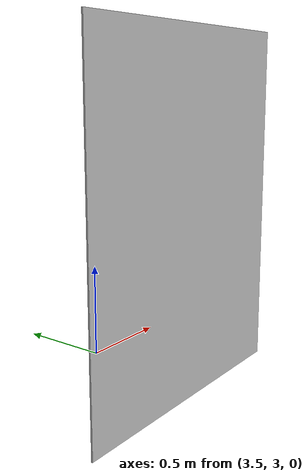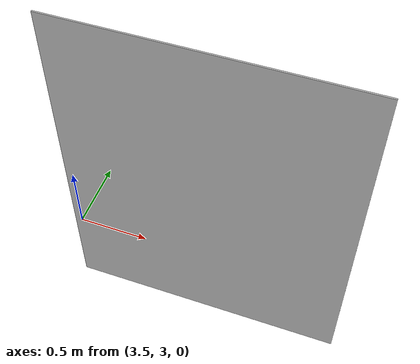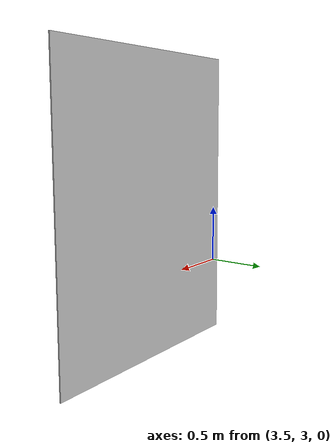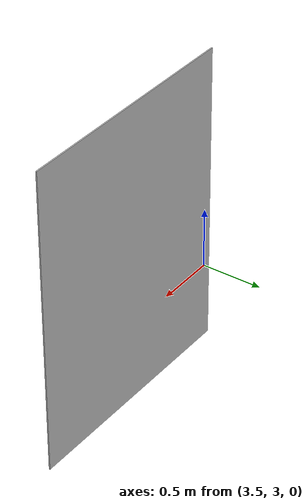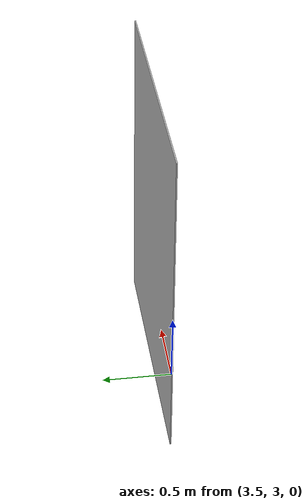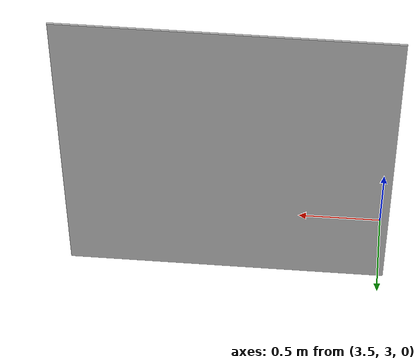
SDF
<!-- -*- mode: XML -*- -->
<sdf version='1.4'>
  <model name='elevator'>
      <static>1</static>
      <link name='link'>
        <inertial>
          <mass>1</mass>
        </inertial>
        <collision name='back'>
          <pose>0 0.005 0.6 0 -0 0</pose>
          <geometry>
            <box>
              <size>2 0.01 2.5</size>
            </box>
          </geometry>
          <max_contacts>10</max_contacts>
          <surface>
            <bounce/>
            <friction>
              <ode/>
            </friction>
            <contact>
              <ode/>
            </contact>
          </surface>
        </collision>
        <visual name='visual1'>
          <pose>0 0.005 0.6 0 -0 0</pose>
          <geometry>
            <box>
              <size>2 0.01 2.5</size>
            </box>
          </geometry>
        <material>
          <script>
            <uri>model://elevator/materials/scripts</uri>
            <uri>model://elevator/materials/textures</uri>
            <name>elevator/Diffuse</name>
          </script>
        </material>
        </visual>
      </link>
      <pose>4.44782 3 0 0 -0 0</pose>
    </model>

</sdf>
